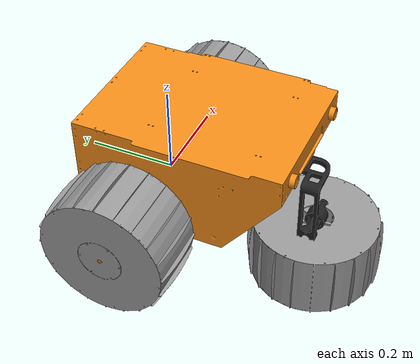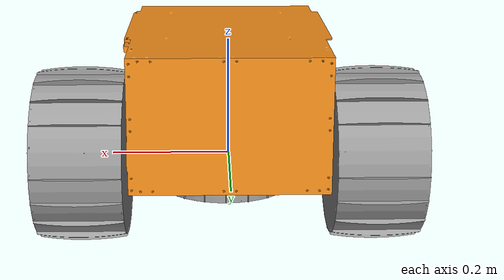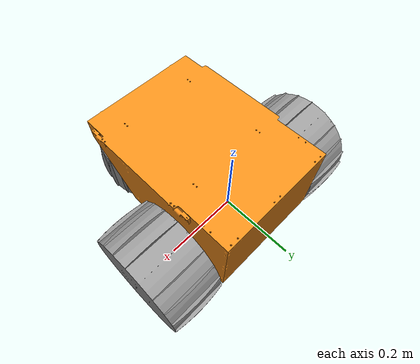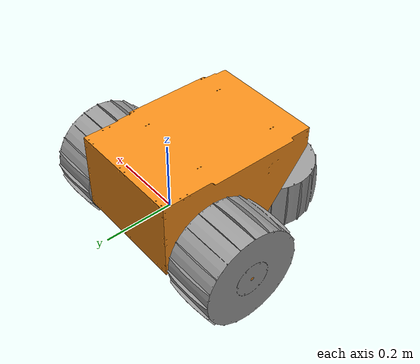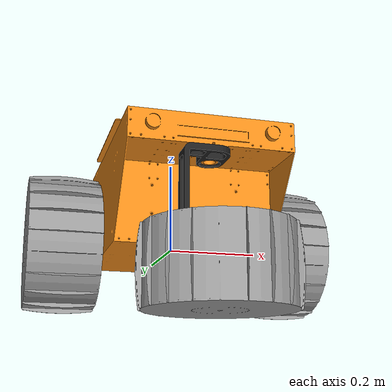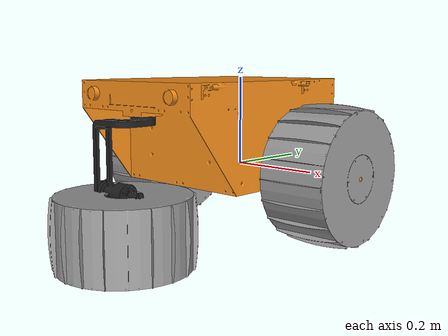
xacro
<?xml version="1.0"?>
<robot name="rover_final" xmlns:xacro="http://www.ros.org/wiki/xacro">

  <xacro:property name="PI" value="3.1415926535897931"/>
  <xacro:property name="mesh_path" value="$(find final_version_rover_description)/meshes" />
  <xacro:include filename="$(find final_version_rover_description)/urdf/rover_final.gazebo" />
  <xacro:include filename="$(find final_version_rover_description)/urdf/materials.xacro" />

  <link name="base_link">
   <collision>
     <origin xyz="0 0 0" rpy="0 0 0"/>
     <geometry>
       <mesh filename="file://${mesh_path}/base_link.STL"/>
     </geometry>
   </collision>
   <visual>
     <origin xyz="0 0 0" rpy="0 0 0"/>
     <geometry>
       <mesh filename="file://${mesh_path}/base_link.STL"/>
     </geometry>
   </visual>
    <inertial>
      <origin xyz="0 -0.1 0" rpy="0 0 0"/>
      <mass value="20"/>
      <inertia ixx="0.401" ixy="-0.04" ixz="0.08"
               iyy="0.748" iyz="-0.110"
               izz="0.866"/>
    </inertial>
  </link>

  <link name="front_left_wheel">
   <collision>
     <origin xyz="-0.074 0 0" rpy="0 ${PI/2} 0"/>
     <geometry>
       <cylinder radius="0.1465" length="0.144"/>
     </geometry>
   </collision>
   <visual>
     <origin xyz="0 0 0" rpy="0 ${PI/2} 0"/>
     <geometry>
       <mesh filename="file://${mesh_path}/front_wheel.STL"/>
     </geometry>
   </visual>
   <inertial>
     <origin xyz="-0.092431 0 0" rpy="0 ${PI/2} 0"/>
     <mass value="2.340"/>
     <inertia ixx="0.02687045" ixy="0.0" ixz="0.0"
              iyy="0.03838138" iyz="0.0"
              izz="0.03838140"/>
   </inertial>
  </link>

  <joint name="front_left_joint" type="continuous">
    <axis xyz="1 0 0"/>
    <limit effort="10000" velocity="10000"/>
    <joint_properties damping="0.0" friction="0.0"/>
    <dynamics damping="0.7"/>
    <origin xyz="-0.175 0 0" rpy="0 0 0"/>
    <parent link="base_link"/>
    <child link="front_left_wheel"/>
  </joint>

  <link name="front_right_wheel">
   <collision>
     <origin xyz="0.074 0 0" rpy="0 -${PI/2} 0"/>
     <geometry>
       <cylinder radius="0.1465" length="0.144"/>
     </geometry>
   </collision>
   <visual>
     <origin xyz="0 0 0" rpy="0 -${PI/2} 0"/>
     <geometry>
       <mesh filename="file://${mesh_path}/front_wheel.STL"/>
     </geometry>
   </visual>
   <inertial>
     <origin xyz="0.092431 0 0" rpy="0 ${PI/2} 0"/>
     <mass value="2.340"/>
     <inertia ixx="0.02687045" ixy="0.0" ixz="0.0"
              iyy="0.03838138" iyz="0.0"
              izz="0.03838140"/>
   </inertial>
  </link>

  <joint name="front_right_joint" type="continuous">
    <axis xyz="1 0 0"/>
    <limit effort="10000" velocity="10000"/>
    <joint_properties damping="0.5" friction="0.5"/>
    <dynamics damping="0.7"/>
    <origin xyz="0.175 0 0" rpy="0 0 0"/>
    <parent link="base_link"/>
    <child link="front_right_wheel"/>
  </joint>

  <link name="tail_link">
   <collision>
     <origin xyz="0 0 0" rpy="0 0 ${PI/2}"/>
     <geometry>
       <mesh filename="file://${mesh_path}/tail_link.STL"/>
     </geometry>
   </collision>
   <visual>
     <origin xyz="0 0 0" rpy="0 0 ${PI/2}"/>
     <geometry>
       <mesh filename="file://${mesh_path}/tail_link.STL"/>
     </geometry>
   </visual>
   <inertial>
     <origin xyz="0.0 -0.03979157 -0.17494464" rpy="0 0 ${PI/2}"/>
     <mass value="1.55"/>
     <inertia ixx="0.01219491" ixy="0.00128996" ixz="0.00206055"
              iyy="0.00128996" iyz="-0.00380082"
              izz="0.00402196"/>
   </inertial>
  </link>

  <joint name="base_to_tail" type="revolute">
    <parent link="base_link"/>
    <child link="tail_link"/>
    <axis xyz="0 0 1"/>
    <joint_properties damping="0.5" friction="0.5"/>
    <dynamics damping="0.7"/>
    <origin xyz="0 -0.3 0.135"/>
    <limit lower="-0.01" upper="0.01" effort="100" velocity="100"/>
  </joint>

  <link name="rear_wheel">
   <collision>
     <origin xyz="0 0 0" rpy="0 ${PI/2} 0"/>
     <geometry>
       <cylinder radius="0.125" length="0.1"/>
     </geometry>
   </collision>
   <visual>
     <origin xyz="0 0 0" rpy="0 0 ${PI}"/>
     <geometry>
       <mesh filename="file://${mesh_path}/rear_wheel.STL"/>
     </geometry>
   </visual>
   <inertial>
     <origin xyz="0 0 0" rpy="0 ${PI/2} 0"/>
     <mass value="1.55"/>
     <inertia ixx="0.01591791" ixy="0.0" ixz="0.0"
              iyy="0.01027374" iyz="0.0"
              izz="0.01027374"/>
   </inertial>
  </link>

  <joint name="rear_joint" type="continuous">
    <axis xyz="1 0 0"/>
    <limit effort="10000" velocity="10000"/>
    <joint_properties damping="0.5" friction="0.5"/>
    <dynamics damping="0.7"/>
    <origin xyz="0 -0.053 -0.16" rpy="0 0 0"/>
    <parent link="tail_link"/>
    <child link="rear_wheel"/>
  </joint>

  <transmission name="tran_front_right">
    <type>transmission_interface/SimpleTransmission</type>
    <joint name="front_right_joint">
      <hardwareInterface>hardware_interface/EffortJointInterface</hardwareInterface>
    </joint>
    <actuator name="motor_front_right">
      <hardwareInterface>hardware_interface/EffortJointInterface</hardwareInterface>
      <mechanicalReduction>1</mechanicalReduction>
    </actuator>
  </transmission>

  <transmission name="tran_front_left_joint">
    <type>transmission_interface/SimpleTransmission</type>
    <joint name="front_left_joint">
      <hardwareInterface>hardware_interface/EffortJointInterface</hardwareInterface>
    </joint>
    <actuator name="motor_front_left_joint">
      <hardwareInterface>hardware_interface/EffortJointInterface</hardwareInterface>
      <mechanicalReduction>1</mechanicalReduction>
    </actuator>
  </transmission>

  <transmission name="tran_rear_joint">
    <type>transmission_interface/SimpleTransmission</type>
    <joint name="rear_joint">
      <hardwareInterface>hardware_interface/EffortJointInterface</hardwareInterface>
    </joint>
    <actuator name="motor_rear">
      <hardwareInterface>hardware_interface/EffortJointInterface</hardwareInterface>
      <mechanicalReduction>1</mechanicalReduction>
    </actuator>
  </transmission>

  <transmission name="tran_base_to_tail">
    <type>transmission_interface/SimpleTransmission</type>
    <joint name="base_to_tail">
      <hardwareInterface>hardware_interface/EffortJointInterface</hardwareInterface>
    </joint>
    <actuator name="motor_base_to_tail">
      <hardwareInterface>hardware_interface/EffortJointInterface</hardwareInterface>
      <mechanicalReduction>1</mechanicalReduction>
    </actuator>
  </transmission>

</robot>
